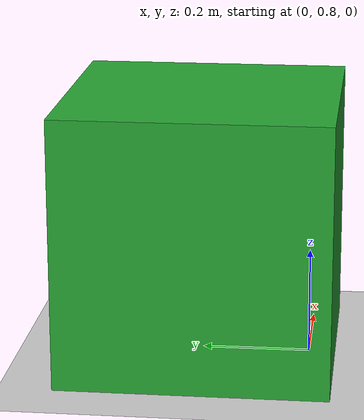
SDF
<?xml version="1.0"?>
<sdf version="1.5">
    <world name="default">
        <gui>
            <camera name="user_camera">
                <pose>-8.89 -14.33 12.97 0.0 0.58 0.84</pose>
                <track_visual>
                    <static>true</static>
                    <use_model_frame>true</use_model_frame>
                    <xyz>-3 0 1</xyz>
                    <inherit_yaw>true</inherit_yaw>
                </track_visual>
            </camera>
        </gui>
        <spherical_coordinates>
            <latitude_deg>48.878922</latitude_deg>
            <longitude_deg>2.367782</longitude_deg>
        </spherical_coordinates>
        <physics type="ode">
            <real_time_update_rate>1000</real_time_update_rate>
            <max_step_size>0.001</max_step_size>
            <real_time_factor>1.0</real_time_factor>
            <max_contacts>20</max_contacts>
            <gravity>0 0 -9.81</gravity>
            <magnetic_field>0.1062e-6 20.8038e-6 -43.2881e-6</magnetic_field>
            <ode>
                <solver>
                    <type>world</type>
                    <min_step_size>0.0001</min_step_size>
                    <iters>50</iters>
                    <precon_iters>0</precon_iters>
                    <sor>1.4</sor>
                    <use_dynamic_moi_rescaling>1</use_dynamic_moi_rescaling>
                </solver>
                <constraints>
                    <cfm>0</cfm>
                    <erp>0.2</erp>
                    <contact_max_correcting_vel>100.0</contact_max_correcting_vel>
                    <contact_surface_layer>0.001</contact_surface_layer>
                </constraints>
            </ode>
        </physics>
        <atmosphere type="adiabatic">
            <temperature>298.15</temperature>
            <pressure>101325</pressure>
            <temperature_gradient>-0.0065</temperature_gradient>
        </atmosphere>
        <!--Drone description-->
        <plugin name="fwman" filename="libsphinx_fwman.so">
            <drone
                name="anafi4k"
                firmware="http://plf.parrot.com/sphinx/firmwares/anafi/pc/latest/images/anafi-pc.ext2.zip"
                hardware="anafi4k">
                <machine_params
                    with_front_cam="0"
                    simple_front_cam="1"
                    sdcard_serial="__undefined__"
                    with_gimbal="0"
                    low_gpu="1"
                    />
                <pose>default</pose>
                <interface>eth1</interface>
            </drone>
            <spawn_point name="default">
                <pose>0 0 0.2 0 0 0</pose>
            </spawn_point>
        </plugin>
        <!--Wind description-->
        <plugin name="wind" filename="libsphinx_wind.so">
            <!-- Wind mean speed in m/s. -->
            <magnitude_mean>0.0</magnitude_mean>
            <!-- Wind mean direction in decimal degrees. -->
            <direction_mean>0.0</direction_mean>
            <!-- Wind mean elevation in decimal degrees. -->
            <elevation_mean>0.0</elevation_mean>
            <!-- Lowpass filter time characteristics in seconds.
              A value of 0 seconds deactivate the filter. -->
      <magnitude_time_for_rise>10.0</magnitude_time_for_rise>
      <direction_time_for_rise>30.0</direction_time_for_rise>
      <elevation_time_for_rise>0.0</elevation_time_for_rise>
      <!-- Wind expressions where "val" is the mean value. -->
      <magnitude_expr>val*(1+0.05*sin(2*pi*time/15))</magnitude_expr>
      <direction_expr>360*time/60</direction_expr>
      <elevation_expr>0.03*noise()</elevation_expr>
  </plugin>
  <!--Scene description-->
  <include>
      <uri>model://sun</uri>
  </include>
  <include>
      <uri>model://ground_plane</uri>
  </include>
  <model name="target">
      <include>
          <uri>model://target</uri>
      </include>
      <plugin name="moving_target" filename="libmoving_target.so"/>
  </model>
  </world>
</sdf>

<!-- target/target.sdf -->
<sdf version="1.5">
  <model name="goal_box">
    <static>0</static>
    <pose>0 1 0.25 0 0 0</pose>
    <link name="goal_box">

      <inertial>
        <mass>1</mass>
        <inertia>
          <ixx>0.0166667</ixx>
          <iyy>0.0166667</iyy>
          <izz>0.0166667</izz>
          <ixy>0.0</ixy>
          <ixz>0.0</ixz>
          <iyz>0.0</iyz>
        </inertia>
      </inertial>

      <visual name="goal_box">
        <geometry>
          <box>
            <size>0.5 0.5 0.5</size>
          </box>
        </geometry>
        <material>
          <script>
            <uri>file://media/materials/scripts/gazebo.material</uri>
            <name>Gazebo/Green</name>
          </script>
        </material>
      </visual>

      <collision name="collision">
        <geometry>
          <box>
            <size>0.5 0.5 0.5</size>
          </box>
        </geometry>
        <surface>
          <friction>
            <ode>
              <mu>0</mu>
              <mu2>0</mu2>
            </ode>
          </friction>
        </surface>
      </collision>

    </link>
  </model>
</sdf>
